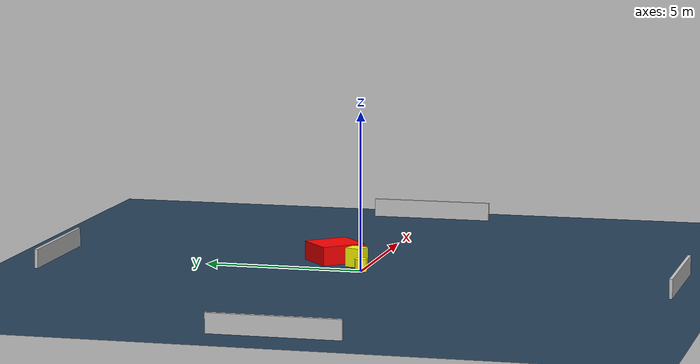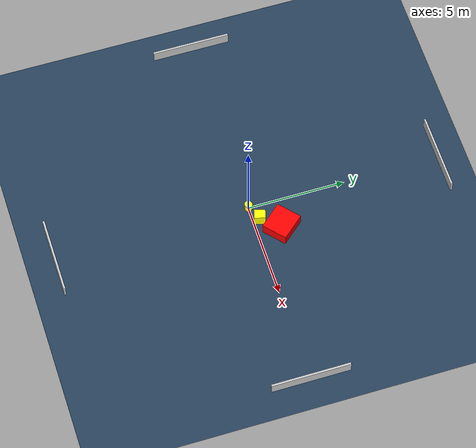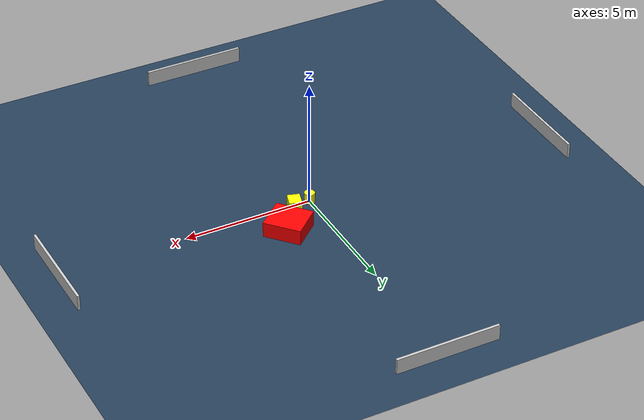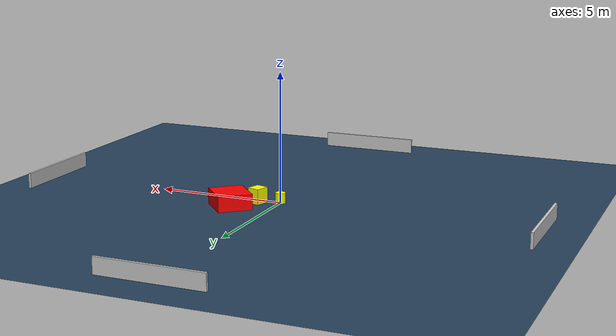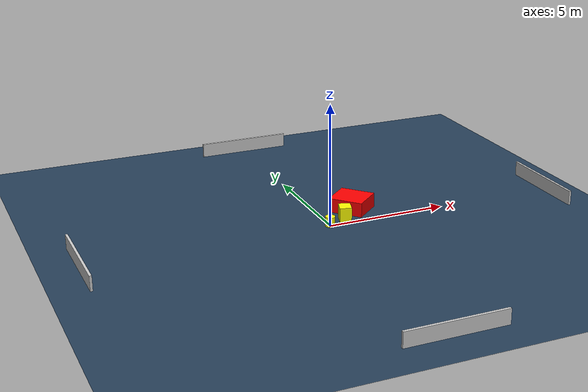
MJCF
<?xml version="1.0" ?>
<mujoco model="generated_environment">
  <option timestep="0.01" integrator="RK4" cone="elliptic"/>
  <default>
    <geom density="1"/>
  </default>
  <asset>
    <texture builtin="gradient" height="3072" name="skybox" rgb1="0.3 0.5 0.7" rgb2="0 0 0" type="skybox" width="512"/>
    <texture builtin="checker" height="300" name="groundplane" rgb1="0.2 0.3 0.4" rgb2="0.1 0.2 0.3" type="2d" width="300"/>
    <material name="groundplane" reflectance="0.2" texrepeat="5 5" texture="groundplane"/>
  </asset>
  <worldbody>
    <light dir="0 0 -1" directional="true" pos="0 0 1.5"/>
    <geom condim="3" friction="0.5 0.005 0.001" material="groundplane" name="floor" pos="0 0 0" size="0 0 0.05" type="plane"/>
    <body name="walls">
      <geom name="wall_1" condim="4" pos="-10.0 0.0 0.3" rgba="0.800000011920929 0.800000011920929 0.800000011920929 1.0" size="0.05 2.0 0.3" type="box"/>
      <geom name="wall_2" condim="4" pos="10.0 0.0 0.3" rgba="0.800000011920929 0.800000011920929 0.800000011920929 1.0" size="0.05 2.0 0.3" type="box"/>
      <geom name="wall_3" condim="4" pos="0.0 -10.0 0.3" rgba="0.800000011920929 0.800000011920929 0.800000011920929 1.0" size="2.0 0.05 0.3" type="box"/>
      <geom name="wall_4" condim="4" pos="0.0 10.0 0.3" rgba="0.800000011920929 0.800000011920929 0.800000011920929 1.0" size="2.0 0.05 0.3" type="box"/>
    </body>
    <body name="robot">
      <joint name="joint_x" type="slide" pos="0 0 0" axis="1 0 0"/>
      <joint name="joint_y" type="slide" pos="0 0 0" axis="0 1 0"/>
      <geom name="robot" type="cylinder" pos="0.0 0.0 0.2" size="0.2 0.2 0.0" mass="5.0" friction="1.0 0.005 0.0001" condim="4" rgba="1.0 1.0 0.0 1.0"/>
    </body>
    <body name="obstacle_1_movable">
      <geom name="obstacle_1_movable" condim="4" pos="0.7970518905233195 0.33432916921980804 0.3" euler="0 0 342.9580421648484" friction="0.0 0.005 0.001" rgba="1.0 1.0 0.0 1.0" size="0.24143291418481344 0.27917902056311206 0.3" type="box" mass="0.1"/>
      <joint type="free"/>
    </body>
    <body name="obstacle_2_static">
      <geom name="obstacle_2_static" condim="4" pos="1.5139969113533882 1.2434343899867903 0.3" euler="0 0 41.278359039128425" friction="0.0 0.005 0.001" rgba="1.0 0.0 0.0 1.0" size="0.6632664264741579 0.7253719601396262 0.3" type="box"/>
    </body>
  </worldbody>
  <actuator>
    <motor name="actuator_x" joint="joint_x" gear="1" ctrlrange="-1 1"/>
    <motor name="actuator_y" joint="joint_y" gear="1" ctrlrange="-1 1"/>
  </actuator>
</mujoco>
